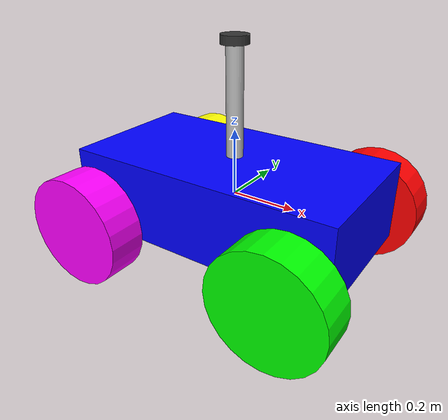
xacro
<?xml version="1.0"?>
<robot xmlns:xacro="http://www.ros.org/wiki/xacro" name="qwacr">
  <!-- Arguments -->
  <xacro:arg name="use_gazebo" default="false"/>
  <xacro:arg name="serial_port" default="/tmp/ttyV0"/>
  <xacro:arg name="baud_rate" default="115200"/>

  <!-- Base -->
  <link name="base_link">
    <visual>
      <origin xyz="0 0 0" rpy="0 0 0"/>
      <geometry>
        <box size="0.8382 0.438 0.2413"/>
      </geometry>
      <material name="blue">
        <color rgba="0 0 1 1"/>
      </material>
    </visual>
    <collision>
      <origin xyz="0 0 0" rpy="0 0 0"/>
      <geometry>
        <box size="0.8382 0.438 0.2413"/>
      </geometry>
    </collision>
    <inertial>
      <mass value="25.0"/>
      <inertia ixx="0.05" ixy="0.0" ixz="0.0" iyy="0.06" iyz="0.0" izz="0.07"/>
    </inertial>
  </link>

  <gazebo reference="base_link">
    <material>Gazebo/Blue</material>
  </gazebo>

  <!-- Front left wheel -->
  <joint name="base_to_front_left_wheel" type="continuous">
    <parent link="base_link"/>
    <child link="front_left_wheel_link"/>
    <origin xyz="0.3175 0.308 -0.0699" rpy="0 0 0"/>
     <axis xyz="0 1 0"/>
    <limit effort="6.2" velocity="104"/>
    <dynamics damping=".0001" friction="0.001"/>
  </joint>
  <link name="front_left_wheel_link">
    <visual>
      <origin xyz="0 0 0" rpy="1.5708 0 0"/>
      <geometry>
        <cylinder radius="0.1651" length="0.1143"/>
      </geometry>
      <material name="red">
        <color rgba="1 0 0 1"/>
      </material>
    </visual>
    <collision>
      <origin xyz="0 0 0" rpy="1.5708 0 0"/>
      <geometry>
        <cylinder radius="0.1651" length="0.1143"/>
      </geometry>
    </collision>
    <inertial>
      <mass value="1.0"/>
      <inertia ixx="0.001" ixy="0.0" ixz="0.0" iyy="0.001" iyz="0.0" izz="0.001"/>
    </inertial>
  </link>

  <gazebo reference="front_left_wheel_link">
    <material>Gazebo/Red</material>
    <mu1>1.0</mu1>
    <mu2>0.5</mu2>
    <slip1>0.5</slip1>
    <slip2>0.0</slip2>
  </gazebo>

  <!-- Front right wheel -->
  <joint name="base_to_front_right_wheel" type="continuous">
    <parent link="base_link"/>
    <child link="front_right_wheel_link"/>
    <origin xyz="0.3175 -0.308 -0.0699" rpy="0 0 0"/>
    <axis xyz="0 1 0"/>
    <limit effort="6.2" velocity="104"/>
    <dynamics damping=".0001" friction="0.001"/>
  </joint>
  <link name="front_right_wheel_link">
    <visual>
      <origin xyz="0 0 0" rpy="1.5708 0 0"/>
      <geometry>
        <cylinder radius="0.1651" length="0.1143"/>
      </geometry>
      <material name="green">
        <color rgba="0 1 0 1"/>
      </material>
    </visual>
    <collision>
      <origin xyz="0 0 0" rpy="1.5708 0 0"/>
      <geometry>
        <cylinder radius="0.1651" length="0.1143"/>
      </geometry>
    </collision>
    <inertial>
      <mass value="1.0"/>
      <inertia ixx="0.001" ixy="0.0" ixz="0.0" iyy="0.001" iyz="0.0" izz="0.001"/>
    </inertial>
  </link>

  <gazebo reference="front_right_wheel_link">
    <material>Gazebo/Green</material>
    <mu1>1.0</mu1>
    <mu2>0.5</mu2>
    <slip1>0.5</slip1>
    <slip2>0.0</slip2>
  </gazebo>

  <!-- Back left wheel -->
  <joint name="base_to_back_left_wheel" type="continuous">
    <parent link="base_link"/>
    <child link="back_left_wheel_link"/>
    <origin xyz="-0.3175 0.308 -0.0699" rpy="0 0 0"/>
     <axis xyz="0 1 0"/>
    <limit effort="6.2" velocity="104"/>
    <dynamics damping=".0001" friction="0.001"/>
  </joint>
  <link name="back_left_wheel_link">
    <visual>
      <origin xyz="0 0 0" rpy="1.5708 0 0"/>
      <geometry>
        <cylinder radius="0.1651" length="0.1143"/>
      </geometry>
      <material name="yellow">
        <color rgba="1 1 0 1"/>
      </material>
    </visual>
    <collision>
      <origin xyz="0 0 0" rpy="1.5708 0 0"/>
      <geometry>
        <cylinder radius="0.1651" length="0.1143"/>
      </geometry>
    </collision>
    <inertial>
      <mass value="3.0"/>
      <inertia ixx="0.002" ixy="0.0" ixz="0.0" iyy="0.002" iyz="0.0" izz="0.002"/>
    </inertial>
  </link>

  <gazebo reference="back_left_wheel_link">
    <material>Gazebo/Yellow</material>
    <mu1>1.0</mu1>
    <mu2>0.5</mu2>
    <slip1>0.5</slip1>
    <slip2>0.0</slip2>
  </gazebo>

  <!-- Back right wheel -->
  <joint name="base_to_back_right_wheel" type="continuous">
    <parent link="base_link"/>
    <child link="back_right_wheel_link"/>
    <origin xyz="-0.3175 -0.308 -0.0699" rpy="0 0 0"/>
    <axis xyz="0 1 0"/>
    <limit effort="6.2" velocity="104"/>
    <dynamics damping=".0001" friction="0.001"/>
  </joint>
  <link name="back_right_wheel_link">
    <visual>
      <origin xyz="0 0 0" rpy="1.5708 0 0"/>
      <geometry>
        <cylinder radius="0.1651" length="0.1143"/>
      </geometry>
      <material name="purple">
        <color rgba="1 0 1 1"/>
      </material>
    </visual>
    <collision>
      <origin xyz="0 0 0" rpy="1.5708 0 0"/>
      <geometry>
        <cylinder radius="0.1651" length="0.1143"/>
      </geometry>
    </collision>
    <inertial>
      <mass value="3.0"/>
      <inertia ixx="0.002" ixy="0.0" ixz="0.0" iyy="0.002" iyz="0.0" izz="0.002"/>
    </inertial>
  </link>

  <gazebo reference="back_right_wheel_link">
    <material>Gazebo/Purple</material>
    <mu1>1.0</mu1>
    <mu2>0.5</mu2>
    <slip1>0.5</slip1>
    <slip2>0.0</slip2>
  </gazebo>

  <!-- Sensor Tower (35cm tall) -->
  <link name="sensor_tower">
    <visual>
      <origin xyz="0 0 0.175" rpy="0 0 0"/>
      <geometry>
        <cylinder radius="0.025" length="0.35"/>
      </geometry>
      <material name="silver">
        <color rgba="0.75 0.75 0.75 1"/>
      </material>
    </visual>
    <collision>
      <origin xyz="0 0 0.175" rpy="0 0 0"/>
      <geometry>
        <cylinder radius="0.025" length="0.35"/>
      </geometry>
    </collision>
    <inertial>
      <mass value="0.2"/>
      <inertia ixx="0.0001" ixy="0.0" ixz="0.0" iyy="0.0001" iyz="0.0" izz="0.00005"/>
    </inertial>
  </link>

  <joint name="base_to_sensor_tower" type="fixed">
    <parent link="base_link"/>
    <child link="sensor_tower"/>
    <origin xyz="0.0 0.0 0.1" rpy="0 0 0"/>
  </joint>

  <!-- GPS Module (LG580P board at base level) -->
  <link name="gps_module">
    <visual>
      <origin xyz="0 0 0" rpy="0 0 0"/>
      <geometry>
        <box size="0.08 0.06 0.02"/>
      </geometry>
      <material name="black">
        <color rgba="0 0 0 1"/>
      </material>
    </visual>
    <collision>
      <origin xyz="0 0 0" rpy="0 0 0"/>
      <geometry>
        <box size="0.08 0.06 0.02"/>
      </geometry>
    </collision>
    <inertial>
      <mass value="0.15"/>
      <inertia ixx="0.00002" ixy="0.0" ixz="0.0" iyy="0.00003" iyz="0.0" izz="0.00002"/>
    </inertial>
  </link>

  <joint name="base_to_gps_module" type="fixed">
    <parent link="base_link"/>
    <child link="gps_module"/>
    <origin xyz="-0.1 0.0 0.11" rpy="0 0 0"/>
  </joint>

  <!-- GPS Reference Frame (antenna midpoint at tower top) -->
  <!-- Dual antennas at ±10cm Y, midpoint defines position measurement -->
  <!-- Frame for GPS driver to publish position and heading -->
  <link name="gps_link">
    <inertial>
      <mass value="0.001"/>
      <inertia ixx="0.000001" ixy="0.0" ixz="0.0" iyy="0.000001" iyz="0.0" izz="0.000001"/>
    </inertial>
  </link>

  <joint name="tower_to_gps" type="fixed">
    <parent link="sensor_tower"/>
    <child link="gps_link"/>
    <origin xyz="0.0 0.0 0.35" rpy="0 0 0"/>
  </joint>

  <!-- LiDAR Sensor Link (SLAMTEC Aurora, mounted at top of tower) -->
  <link name="laser_frame">
    <visual>
      <origin xyz="0 0 0" rpy="0 0 0"/>
      <geometry>
        <cylinder radius="0.04" length="0.025"/>
      </geometry>
      <material name="darkgrey">
        <color rgba="0.2 0.2 0.2 1"/>
      </material>
    </visual>
    <collision>
      <origin xyz="0 0 0" rpy="0 0 0"/>
      <geometry>
        <cylinder radius="0.04" length="0.025"/>
      </geometry>
    </collision>
    <inertial>
      <mass value="0.225"/>
      <inertia ixx="0.0001" ixy="0.0" ixz="0.0" iyy="0.0001" iyz="0.0" izz="0.0001"/>
    </inertial>
  </link>

  <joint name="tower_to_laser" type="fixed">
    <parent link="sensor_tower"/>
    <child link="laser_frame"/>
    <origin xyz="0.0 0.0 0.35" rpy="0 0 0"/>
  </joint>

  <!-- Gazebo Sensor Plugins (only in simulation mode) -->
  <xacro:if value="$(arg use_gazebo)">
    <!-- LiDAR Sensor Plugin -->
    <gazebo reference="laser_frame">
      <sensor name="laser_scanner" type="gpu_lidar">
        <topic>scan</topic>
        <update_rate>10</update_rate>
        <lidar>
          <scan>
            <horizontal>
              <samples>360</samples>
              <resolution>1</resolution>
              <min_angle>-3.14159</min_angle>
              <max_angle>3.14159</max_angle>
            </horizontal>
          </scan>
          <range>
            <min>0.12</min>
            <max>12.0</max>
            <resolution>0.01</resolution>
          </range>
          <noise>
            <type>gaussian</type>
            <mean>0.0</mean>
            <stddev>0.01</stddev>
          </noise>
        </lidar>
        <always_on>1</always_on>
        <visualize>true</visualize>
      </sensor>
    </gazebo>

    <!-- GPS Sensor Plugin -->
    <gazebo reference="gps_link">
      <sensor name="gps_sensor" type="navsat">
        <topic>gps/fix</topic>
        <update_rate>5</update_rate>
        <always_on>1</always_on>
        <navsat>
          <position_sensing>
            <horizontal>
              <noise type="gaussian">
                <mean>0.0</mean>
                <stddev>1.0</stddev>
              </noise>
            </horizontal>
            <vertical>
              <noise type="gaussian">
                <mean>0.0</mean>
                <stddev>2.0</stddev>
              </noise>
            </vertical>
          </position_sensing>
          <velocity_sensing>
            <horizontal>
              <noise type="gaussian">
                <mean>0.0</mean>
                <stddev>0.1</stddev>
              </noise>
            </horizontal>
            <vertical>
              <noise type="gaussian">
                <mean>0.0</mean>
                <stddev>0.1</stddev>
              </noise>
            </vertical>
          </velocity_sensing>
        </navsat>
      </sensor>
    </gazebo>

    <!-- IMU Sensor Plugin -->
    <gazebo reference="base_link">
      <sensor name="imu_sensor" type="imu">
        <topic>imu/data</topic>
        <update_rate>50</update_rate>
        <always_on>1</always_on>
        <imu>
          <angular_velocity>
            <x>
              <noise type="gaussian">
                <mean>0.0</mean>
                <stddev>0.01</stddev>
              </noise>
            </x>
            <y>
              <noise type="gaussian">
                <mean>0.0</mean>
                <stddev>0.01</stddev>
              </noise>
            </y>
            <z>
              <noise type="gaussian">
                <mean>0.0</mean>
                <stddev>0.01</stddev>
              </noise>
            </z>
          </angular_velocity>
          <linear_acceleration>
            <x>
              <noise type="gaussian">
                <mean>0.0</mean>
                <stddev>0.05</stddev>
              </noise>
            </x>
            <y>
              <noise type="gaussian">
                <mean>0.0</mean>
                <stddev>0.05</stddev>
              </noise>
            </y>
            <z>
              <noise type="gaussian">
                <mean>0.0</mean>
                <stddev>0.05</stddev>
              </noise>
            </z>
          </linear_acceleration>
        </imu>
      </sensor>
    </gazebo>
  </xacro:if>

  <!-- ros2_control: use hardware plugin with serial simulator for development -->
  <xacro:unless value="$(arg use_gazebo)">
    <ros2_control name="MegaDiffDriveHardware" type="system">
      <hardware>
        <plugin>mega_diff_drive_control/MegaDiffDriveHardware</plugin>
        <param name="serial_port">$(arg serial_port)</param>
        <param name="baud_rate">$(arg baud_rate)</param>
      </hardware>
      <joint name="base_to_front_left_wheel">
        <command_interface name="velocity"/>
        <state_interface name="velocity"/>
        <state_interface name="position"/>
      </joint>
      <joint name="base_to_front_right_wheel">
        <command_interface name="velocity"/>
        <state_interface name="velocity"/>
        <state_interface name="position"/>
      </joint>
      <joint name="base_to_back_left_wheel">
        <command_interface name="velocity"/>
        <state_interface name="velocity"/>
        <state_interface name="position"/>
      </joint>
      <joint name="base_to_back_right_wheel">
        <command_interface name="velocity"/>
        <state_interface name="velocity"/>
        <state_interface name="position"/>
      </joint>
    </ros2_control>
  </xacro:unless>

  <!-- Gazebo simulation mode: use built-in differential drive plugin (simpler, more stable) -->
  <xacro:if value="$(arg use_gazebo)">
    <gazebo>
      <plugin filename="gz-sim-diff-drive-system" name="gz::sim::systems::DiffDrive">
        <left_joint>base_to_front_left_wheel</left_joint>
        <left_joint>base_to_back_left_wheel</left_joint>
        <right_joint>base_to_front_right_wheel</right_joint>
        <right_joint>base_to_back_right_wheel</right_joint>
        <wheel_separation>0.38</wheel_separation>
        <wheel_radius>0.165</wheel_radius>
        <odom_publish_frequency>50</odom_publish_frequency>
        <max_linear_acceleration>1.0</max_linear_acceleration>
        <min_linear_acceleration>-1.0</min_linear_acceleration>
        <max_angular_acceleration>2.0</max_angular_acceleration>
        <min_angular_acceleration>-2.0</min_angular_acceleration>
        <max_linear_velocity>1.5</max_linear_velocity>
        <min_linear_velocity>-1.5</min_linear_velocity>
        <max_angular_velocity>3.0</max_angular_velocity>
        <min_angular_velocity>-3.0</min_angular_velocity>
        <topic>cmd_vel</topic>
        <odom_topic>odom</odom_topic>
        <tf_topic>tf</tf_topic>
        <frame_id>odom</frame_id>
        <child_frame_id>base_link</child_frame_id>
        <robot_base_frame>base_link</robot_base_frame>
      </plugin>

      <plugin filename="gz-sim-joint-state-publisher-system" name="gz::sim::systems::JointStatePublisher">
        <joint_name>base_to_front_left_wheel</joint_name>
        <joint_name>base_to_front_right_wheel</joint_name>
        <joint_name>base_to_back_left_wheel</joint_name>
        <joint_name>base_to_back_right_wheel</joint_name>
      </plugin>
    </gazebo>
  </xacro:if>

</robot>
